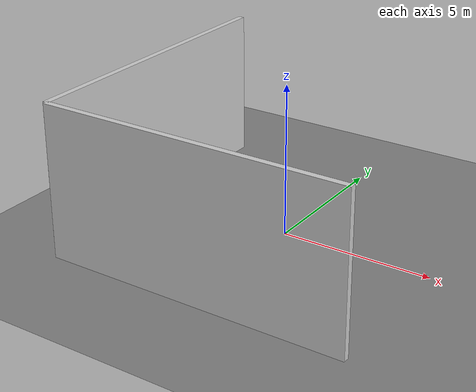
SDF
<?xml version="1.0" ?>
<sdf version="1.7">
  <world name="simple_room">
    <light name="sun" type="directional">
      <cast_shadows>1</cast_shadows>
      <pose>0 0 10 0 0 0</pose>
      <diffuse>0.8 0.8 0.8 1</diffuse>
      <specular>0.2 0.2 0.2 1</specular>
      <attenuation>
        <range>1000</range>
        <constant>0.9</constant>
        <linear>0.01</linear>
        <quadratic>0.001</quadratic>
      </attenuation>
      <direction>-0.6 0.4 -0.8</direction>
    </light>

    <model name="ground_plane">
      <static>true</static>
      <link name="link">
        <collision name="collision">
          <geometry>
            <plane>
              <normal>0 0 1</normal>
              <size>100 100</size>
            </plane>
          </geometry>
        </collision>
        <visual name="visual">
          <geometry>
            <plane>
              <normal>0 0 1</normal>
              <size>100 100</size>
            </plane>
          </geometry>
          <material>
            <ambient>0.3 0.3 0.3 1</ambient>
            <diffuse>0.5 0.5 0.5 1</diffuse>
            <specular>0.1 0.1 0.1 1</specular>
          </material>
        </visual>
      </link>
    </model>

    <model name="simple_room_wall_1">
      <pose>-5 0 2.5 0 0 1.5707</pose>
      <link name="link">
        <collision name="collision">
          <geometry>
            <box>
              <size>10 0.2 5</size>
            </box>
          </geometry>
        </collision>
        <visual name="visual">
          <geometry>
            <box>
              <size>10 0.2 5</size>
            </box>
          </geometry>
          <material>
            <ambient>0.8 0.8 0.8 1</ambient>
            <diffuse>0.8 0.8 0.8 1</diffuse>
            <specular>0.5 0.5 0.5 1</specular>
          </material>
        </visual>
      </link>
    </model>

    <model name="simple_room_wall_2">
      <pose>0 -5 2.5 0 0 0</pose>
      <link name="link">
        <collision name="collision">
          <geometry>
            <box>
              <size>10 0.2 5</size>
            </box>
          </geometry>
        </collision>
        <visual name="visual">
          <geometry>
            <box>
              <size>10 0.2 5</size>
            </box>
          </geometry>
          <material>
            <ambient>0.8 0.8 0.8 1</ambient>
            <diffuse>0.8 0.8 0.8 1</diffuse>
            <specular>0.5 0.5 0.5 1</specular>
          </material>
        </visual>
      </link>
    </model>

    <gravity>0 0 -9.8</gravity>
    <magnetic_field>6e-06 2.3e-05 -4.2e-05</magnetic_field>
    <atmosphere type="adiabatic"/>
    <physics type="ode">
      <max_step_size>0.001</max_step_size>
      <real_time_factor>1</real_time_factor>
      <real_time_update_rate>1000</real_time_update_rate>
    </physics>
    <scene>
      <ambient>0.4 0.4 0.4 1</ambient>
      <background>0.7 0.7 0.7 1</background>
      <shadows>true</shadows>
    </scene>
  </world>
</sdf>
